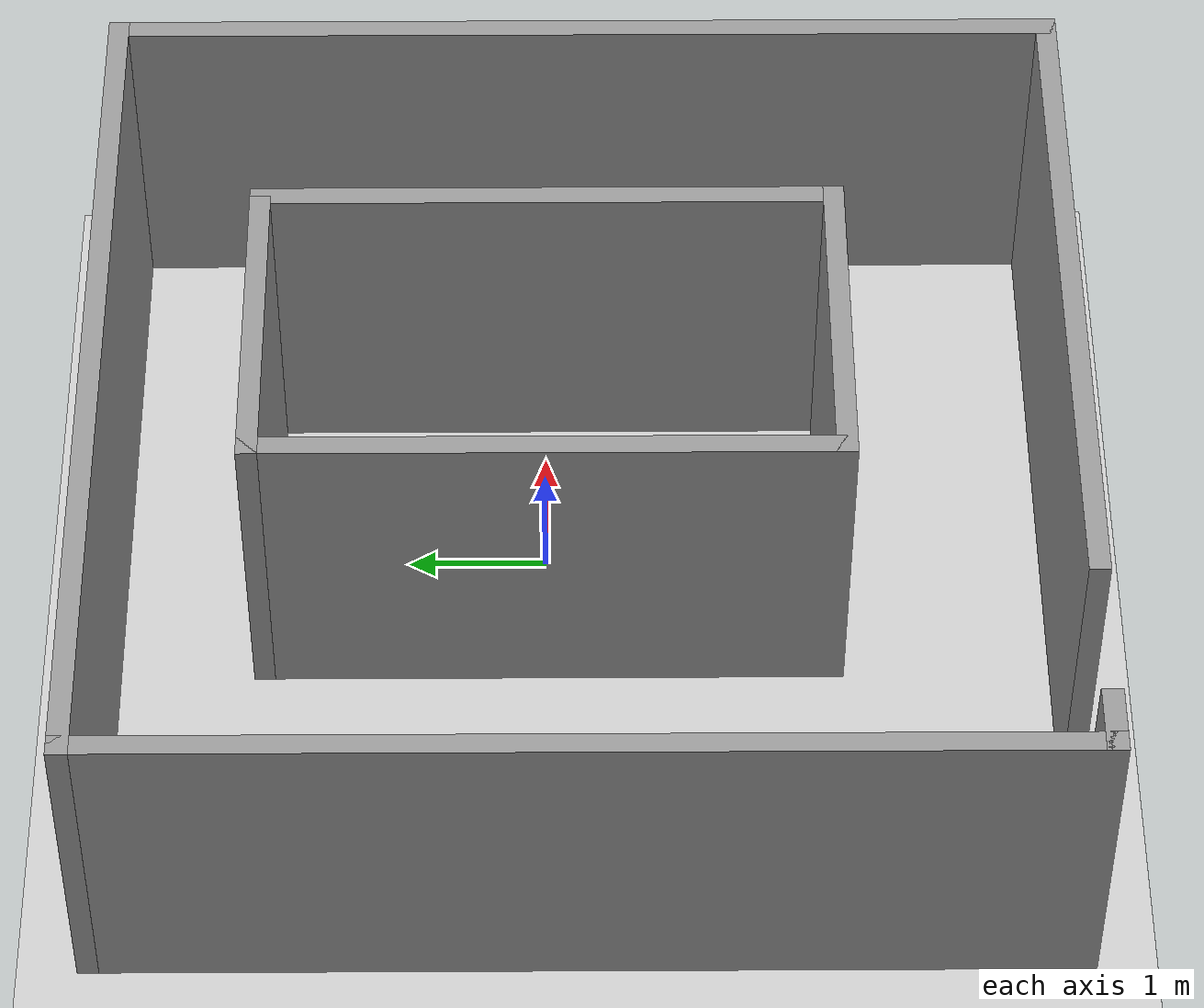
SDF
<sdf version="1.7">
 <world name="default">
  <light name="sun" type="directional">
   <pose>0 0 10 0 -0 0</pose>
   <diffuse>0.8 0.8 0.8 1</diffuse>
   <specular>0.2 0.2 0.2 1</specular>
   <attenuation>
    <range>1000</range>
    <constant>0.9</constant>
    <linear>0.01</linear>
    <quadratic>0.001</quadratic>
   </attenuation>
   <direction>-0.5 0.1 -0.9</direction>
   <spot><inner_angle>0</inner_angle><outer_angle>0</outer_angle><falloff>0</falloff></spot>
  </light>
  <model name="ground_plane">
   <static>1</static>
   <link name="link">
    <collision name="collision">
     <geometry><plane><normal>0 0 1</normal><size>100 100</size></plane></geometry>
     <surface>
      <contact><collide_bitmask>65535</collide_bitmask></contact>
      <friction><ode><mu>100</mu><mu2>50</mu2></ode></friction>
     </surface>
    </collision>
    <visual name="visual">
     <cast_shadows>0</cast_shadows>
     <geometry><plane><normal>0 0 1</normal><size>100 100</size></plane></geometry>
     <material>
      <script><uri>file://media/materials/scripts/gazebo.material</uri><name>Gazebo/Grey</name></script>
     </material>
    </visual>
   </link>
  </model>
  <gravity>0 0 -9.8</gravity>
  <magnetic_field>6e-06 2.3e-05 -4.2e-05</magnetic_field>
  <atmosphere type="adiabatic"/>
  <physics type="ode">
   <max_step_size>0.001</max_step_size>
   <real_time_factor>1</real_time_factor>
   <real_time_update_rate>1000</real_time_update_rate>
  </physics>
  <scene><ambient>0.4 0.4 0.4 1</ambient><background>0.7 0.7 0.7 1</background><shadows>1</shadows></scene>
  <spherical_coordinates>
   <surface_model>EARTH_WGS84</surface_model>
   <latitude_deg>0</latitude_deg>
   <longitude_deg>0</longitude_deg>
   <elevation>0</elevation>
   <heading_deg>0</heading_deg>
  </spherical_coordinates>
  <model name="pledge3">
   <pose>-0.225544 -0.283141 0 0 -0 0</pose>
   <link name="Wall_12">
    <collision name="Wall_12_Collision">
     <geometry><box><size>5.25 0.15 2.5</size></box></geometry>
     <pose>0 0 1.25 0 -0 0</pose>
    </collision>
    <visual name="Wall_12_Visual">
     <pose>0 0 1.25 0 -0 0</pose>
     <geometry><box><size>5.25 0.15 2.5</size></box></geometry>
     <material>
      <script><uri>file://media/materials/scripts/gazebo.material</uri><name>Gazebo/Grey</name></script>
      <ambient>1 1 1 1</ambient>
     </material>
     <meta><layer>0</layer></meta>
    </visual>
    <pose>0.75 -3.425 0 0 -0 0</pose>
   </link>
   <link name="Wall_18">
    <collision name="Wall_18_Collision">
     <geometry><box><size>7 0.15 2.5</size></box></geometry>
     <pose>0 0 1.25 0 -0 0</pose>
    </collision>
    <visual name="Wall_18_Visual">
     <pose>0 0 1.25 0 -0 0</pose>
     <geometry><box><size>7 0.15 2.5</size></box></geometry>
     <material>
      <script><uri>file://media/materials/scripts/gazebo.material</uri><name>Gazebo/Grey</name></script>
      <ambient>1 1 1 1</ambient>
     </material>
     <meta><layer>0</layer></meta>
    </visual>
    <pose>3.3 -0 0 0 -0 1.5708</pose>
   </link>
   <link name="Wall_19">
    <collision name="Wall_19_Collision">
     <geometry><box><size>6.75 0.15 2.5</size></box></geometry>
     <pose>0 0 1.25 0 -0 0</pose>
    </collision>
    <visual name="Wall_19_Visual">
     <pose>0 0 1.25 0 -0 0</pose>
     <geometry><box><size>6.75 0.15 2.5</size></box></geometry>
     <material>
      <script><uri>file://media/materials/scripts/gazebo.material</uri><name>Gazebo/Grey</name></script>
      <ambient>1 1 1 1</ambient>
     </material>
     <meta><layer>0</layer></meta>
    </visual>
    <pose>-0 3.425 0 0 -0 3.14159</pose>
   </link>
   <link name="Wall_20">
    <collision name="Wall_20_Collision">
     <geometry><box><size>7 0.15 2.5</size></box></geometry>
     <pose>0 0 1.25 0 -0 0</pose>
    </collision>
    <visual name="Wall_20_Visual">
     <pose>0 0 1.25 0 -0 0</pose>
     <geometry><box><size>7 0.15 2.5</size></box></geometry>
     <material>
      <script><uri>file://media/materials/scripts/gazebo.material</uri><name>Gazebo/Grey</name></script>
      <ambient>1 1 1 1</ambient>
     </material>
     <meta><layer>0</layer></meta>
    </visual>
    <pose>-3.3 -0 0 0 -0 -1.5708</pose>
   </link>
   <link name="Wall_21">
    <collision name="Wall_21_Collision">
     <geometry><box><size>0.5 0.15 2.5</size></box></geometry>
     <pose>0 0 1.25 0 -0 0</pose>
    </collision>
    <visual name="Wall_21_Visual">
     <pose>0 0 1.25 0 -0 0</pose>
     <geometry><box><size>0.5 0.15 2.5</size></box></geometry>
     <material>
      <script><uri>file://media/materials/scripts/gazebo.material</uri><name>Gazebo/Grey</name></script>
      <ambient>1 1 1 1</ambient>
     </material>
     <meta><layer>0</layer></meta>
    </visual>
    <pose>-3.125 -3.425 0 0 -0 0</pose>
   </link>
   <link name="Wall_5">
    <collision name="Wall_5_Collision">
     <geometry><box><size>4.25 0.15 2.5</size></box></geometry>
     <pose>0 0 1.25 0 -0 0</pose>
    </collision>
    <visual name="Wall_5_Visual">
     <pose>0 0 1.25 0 -0 0</pose>
     <geometry><box><size>4.25 0.15 2.5</size></box></geometry>
     <material>
      <script><uri>file://media/materials/scripts/gazebo.material</uri><name>Gazebo/Grey</name></script>
      <ambient>1 1 1 1</ambient>
     </material>
     <meta><layer>0</layer></meta>
    </visual>
    <pose>-0.759123 0.261391 0 0 -0 -1.5708</pose>
   </link>
   <link name="Wall_6">
    <collision name="Wall_6_Collision">
     <geometry><box><size>2.5 0.15 2.5</size></box></geometry>
     <pose>0 0 1.25 0 -0 0</pose>
    </collision>
    <visual name="Wall_6_Visual">
     <pose>0 0 1.25 0 -0 0</pose>
     <geometry><box><size>2.5 0.15 2.5</size></box></geometry>
     <material>
      <script><uri>file://media/materials/scripts/gazebo.material</uri><name>Gazebo/Grey</name></script>
      <ambient>1 1 1 1</ambient>
     </material>
     <meta><layer>0</layer></meta>
    </visual>
    <pose>0.415877 -1.78861 0 0 -0 0</pose>
   </link>
   <link name="Wall_7">
    <collision name="Wall_7_Collision">
     <geometry><box><size>4.25 0.15 2.5</size></box></geometry>
     <pose>0 0 1.25 0 -0 0</pose>
    </collision>
    <visual name="Wall_7_Visual">
     <pose>0 0 1.25 0 -0 0</pose>
     <geometry><box><size>4.25 0.15 2.5</size></box></geometry>
     <material>
      <script><uri>file://media/materials/scripts/gazebo.material</uri><name>Gazebo/Grey</name></script>
      <ambient>1 1 1 1</ambient>
     </material>
     <meta><layer>0</layer></meta>
    </visual>
    <pose>1.59088 0.261391 0 0 -0 1.5708</pose>
   </link>
   <link name="Wall_8">
    <collision name="Wall_8_Collision">
     <geometry><box><size>2.5 0.15 2.5</size></box></geometry>
     <pose>0 0 1.25 0 -0 0</pose>
    </collision>
    <visual name="Wall_8_Visual">
     <pose>0 0 1.25 0 -0 0</pose>
     <geometry><box><size>2.5 0.15 2.5</size></box></geometry>
     <material>
      <script><uri>file://media/materials/scripts/gazebo.material</uri><name>Gazebo/Grey</name></script>
      <ambient>1 1 1 1</ambient>
     </material>
     <meta><layer>0</layer></meta>
    </visual>
    <pose>0.415877 2.31139 0 0 -0 3.14159</pose>
   </link>
   <static>1</static>
  </model>
 </world>
</sdf>
